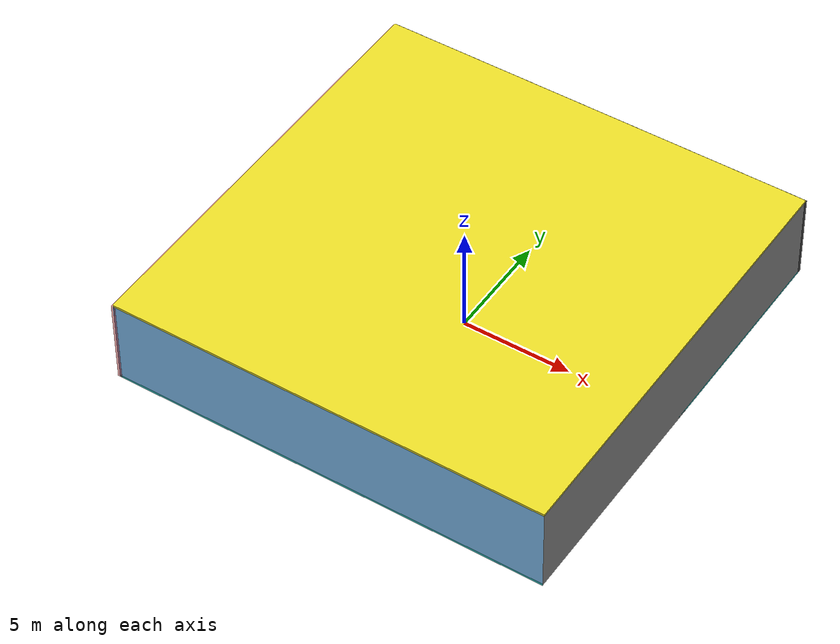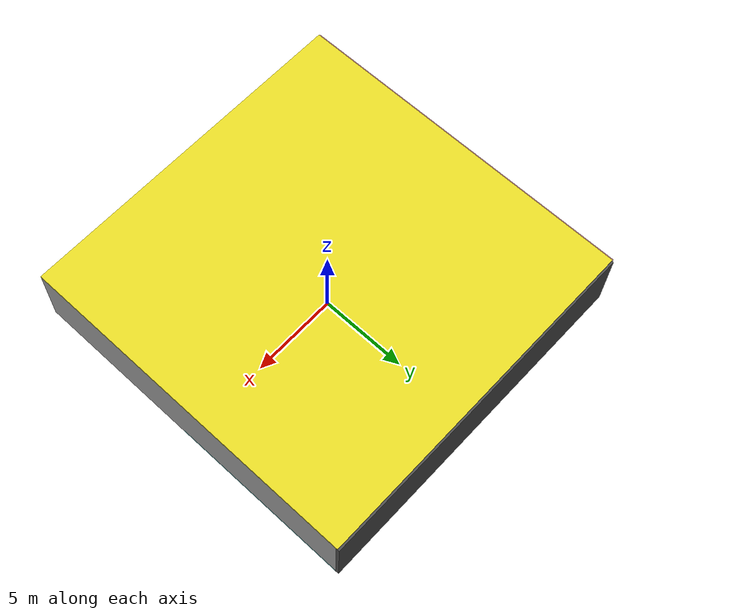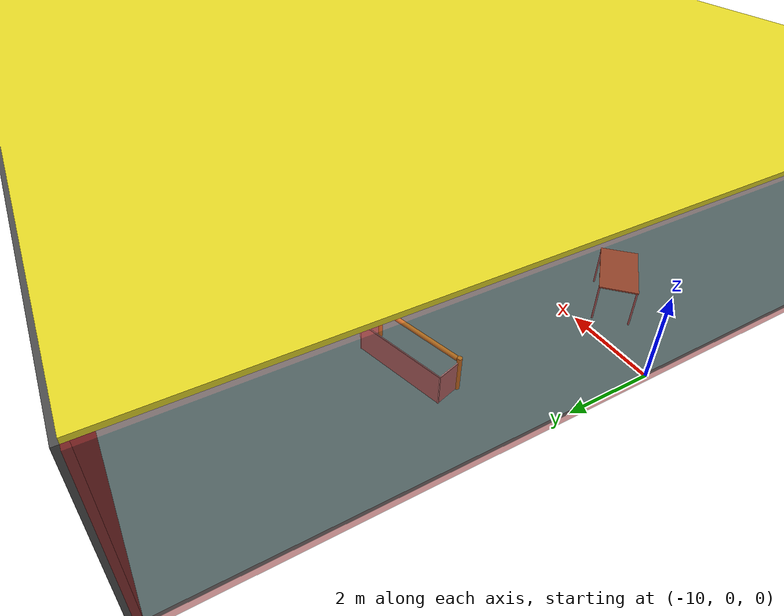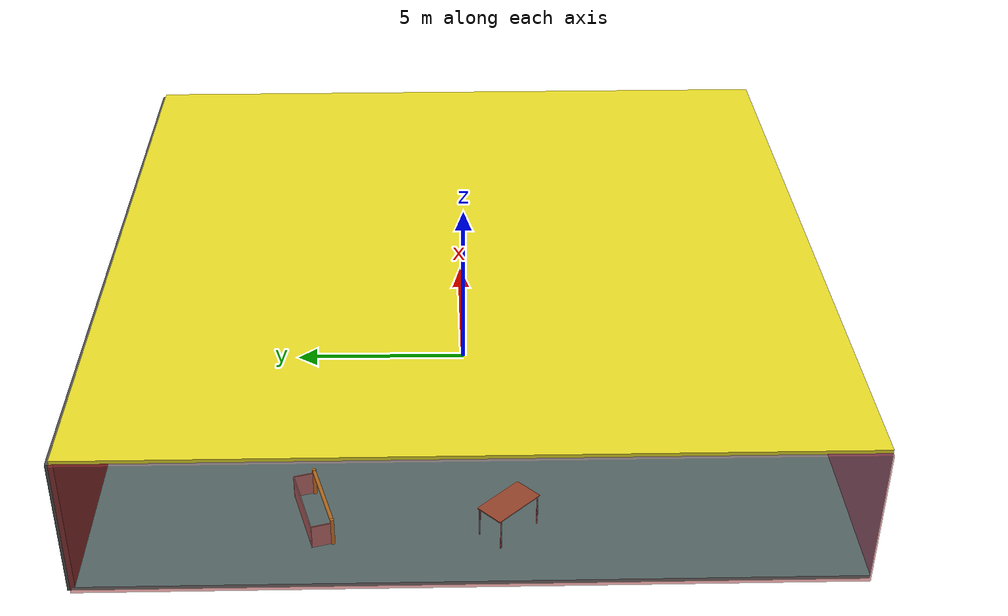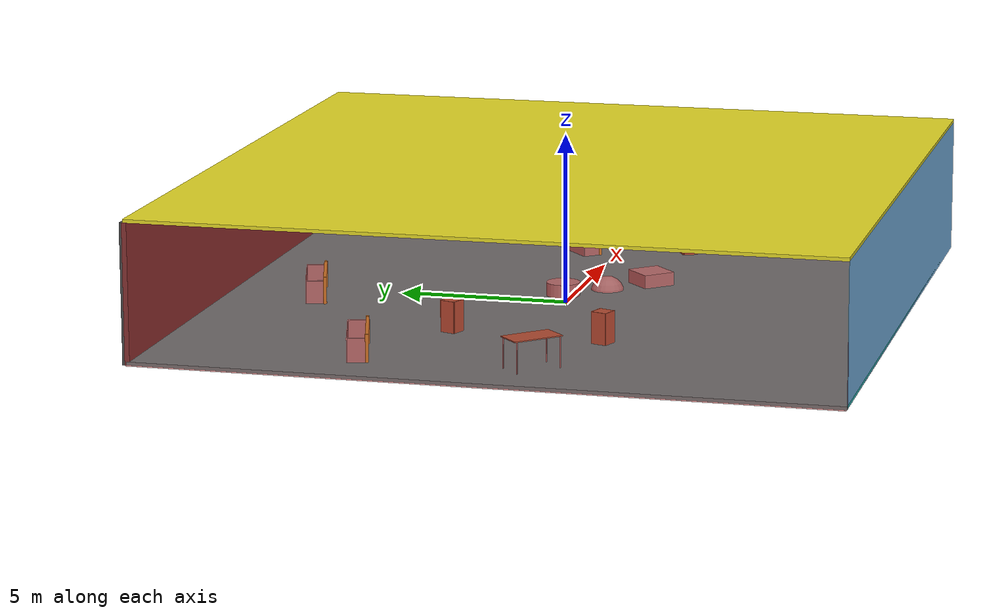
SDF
<sdf version="1.4">
 <world name="default">
  <physics type="ode">
   <max_step_size>0.001</max_step_size>
   <real_time_factor>1</real_time_factor>
   <real_time_update_rate>1000</real_time_update_rate>
   <gravity>0 0 -9.8</gravity>
  </physics>
  <scene><ambient>0.4 0.4 0.4 1</ambient><background>0.7 0.7 0.7 1</background><shadows>1</shadows></scene>
  <model name="Surrounding">
   <static>1</static>
   <link name="Ceiling">
    <collision name="Ceiling_Collision"><geometry><box><size>20 20 0.1</size></box></geometry></collision>
    <visual name="Ceiling_Visual">
     <geometry><box><size>20 20 0.1</size></box></geometry>
     <material>
      <script><uri>file://media/materials/scripts/gazebo.material</uri><name>Gazebo/YellowGlow</name></script>
     </material>
    </visual>
    <pose>0 0 4.05 0 0 0</pose>
   </link>
   <link name="Wall_South">
    <collision name="Wall_South_Collision">
     <geometry><box><size>20 0 4</size></box></geometry>
     <pose>0 0 2 0 -0 0</pose>
    </collision>
    <visual name="Wall_South_Visual">
     <pose>0 0 2 0 -0 0</pose>
     <geometry><box><size>20 0 4</size></box></geometry>
     <material>
      <script><uri>file://media/materials/scripts/gazebo.material</uri><name>Gazebo/SkyBlue</name></script>
     </material>
    </visual>
    <velocity_decay><linear>0</linear><angular>0</angular></velocity_decay>
    <pose>0 -10 0 0 -0 0</pose>
   </link>
   <link name="Wall_East">
    <collision name="Wall_21_Collision">
     <geometry><box><size>20 0 4</size></box></geometry>
     <pose>0 0 2 0 -0 0</pose>
    </collision>
    <visual name="Wall_21_Visual">
     <pose>0 0 2 0 -0 0</pose>
     <geometry><box><size>20 0 4</size></box></geometry>
     <material>
      <script><uri>file://media/materials/scripts/gazebo.material</uri><name>Gazebo/GreyGradientSky</name></script>
     </material>
    </visual>
    <velocity_decay><linear>0</linear><angular>0</angular></velocity_decay>
    <pose>10 0 0 0 -0 1.5708</pose>
   </link>
   <link name="Wall_North">
    <collision name="Wall_22_Collision">
     <geometry><box><size>20 0.2 4</size></box></geometry>
     <pose>0 0 2 0 -0 0</pose>
    </collision>
    <visual name="Wall_22_Visual">
     <pose>0 0 2 0 -0 0</pose>
     <geometry><box><size>20 0.2 4</size></box></geometry>
     <material>
      <script><uri>file://media/materials/scripts/gazebo.material</uri><name>Gazebo/Road</name></script>
     </material>
    </visual>
    <velocity_decay><linear>0</linear><angular>0</angular></velocity_decay>
    <pose>0 10 0 0 -0 0</pose>
   </link>
   <link name="Wall_West">
    <collision name="Wall_23_Collision">
     <geometry><box><size>20 0.2 4</size></box></geometry>
     <pose>0 0 2 0 -0 0</pose>
    </collision>
    <visual name="Wall_23_Visual">
     <pose>0 0 2 0 -0 0</pose>
     <geometry><box><size>20 0.2 4</size></box></geometry>
     <material>
      <script><uri>file://media/materials/scripts/gazebo.material</uri><name>Gazebo/RedTransparent</name></script>
     </material>
    </visual>
    <velocity_decay><linear>0</linear><angular>0</angular></velocity_decay>
    <pose>-10 0 0 0 0 -1.5708</pose>
   </link>
   <link name="Ground_link">
    <collision name="collision">
     <pose>0 0 .05 0 -0 0</pose>
     <geometry><box><size>20 20 0.1</size></box></geometry>
    </collision>
    <visual name="visual">
     <pose>0 0 .05 0 -0 0</pose>
     <geometry><box><size>20 20 0.1</size></box></geometry>
     <material>
      <script>
       <uri>file://media/materials/scripts/gazebo.material</uri>
       <name>Gazebo/TurquoiseGlowOutline</name>
      </script>
     </material>
    </visual>
   </link>
   <static>1</static>
  </model>
  <spherical_coordinates>
   <surface_model>EARTH_WGS84</surface_model>
   <latitude_deg>0</latitude_deg>
   <longitude_deg>0</longitude_deg>
   <elevation>0</elevation>
   <heading_deg>0</heading_deg>
  </spherical_coordinates>
  <light name="lightball_0" type="diffuse">
   <diffuse>0.8 0.8 0.8 1</diffuse>
   <specular>0.2 0.2 0.2 1</specular>
   <attenuation>
    <range>100</range>
    <constant>0.7</constant>
    <linear>0.01</linear>
    <quadratic>0.001</quadratic>
   </attenuation>
   <direction>-0.5 0.1 -0.9</direction>
   <pose>2.35558864893 -6.4986682654 2.77005097983 0 0 0</pose>
  </light>
  <light name="lightball_1" type="diffuse">
   <diffuse>0.8 0.8 0.8 1</diffuse>
   <specular>0.2 0.2 0.2 1</specular>
   <attenuation>
    <range>100</range>
    <constant>0.7</constant>
    <linear>0.01</linear>
    <quadratic>0.001</quadratic>
   </attenuation>
   <direction>-0.5 0.1 -0.9</direction>
   <pose>0.2472273773 1.36731107864 1.11432075239 0 0 0</pose>
  </light>
  <light name="lightball_2" type="diffuse">
   <diffuse>0.8 0.8 0.8 1</diffuse>
   <specular>0.2 0.2 0.2 1</specular>
   <attenuation>
    <range>100</range>
    <constant>0.7</constant>
    <linear>0.01</linear>
    <quadratic>0.001</quadratic>
   </attenuation>
   <direction>-0.5 0.1 -0.9</direction>
   <pose>-1.75927075957 1.45993327126 1.69495750589 0 0 0</pose>
  </light>
  <light name="lightball_3" type="diffuse">
   <diffuse>0.8 0.8 0.8 1</diffuse>
   <specular>0.2 0.2 0.2 1</specular>
   <attenuation>
    <range>100</range>
    <constant>0.7</constant>
    <linear>0.01</linear>
    <quadratic>0.001</quadratic>
   </attenuation>
   <direction>-0.5 0.1 -0.9</direction>
   <pose>1.27216431689 -6.62511335968 3.71186036989 0 0 0</pose>
  </light>
  <include><uri>model://table</uri><pose>-8.04048630791 -0.988831290554 0 0 0 2.33798642322</pose></include>
  <include>
   <uri>model://robocup_3Dsim_goal</uri>
   <pose>-7.50130699608 3.83668981371 0 0 0 1.84791818399</pose>
  </include>
  <include><uri>model://cabinet</uri><pose>-4.8483269235 -2.24042266478 0 0 0 2.78617129616</pose></include>
  <include><uri>model://cabinet</uri><pose>-4.52199206255 2.22296025551 0 0 0 2.77738331479</pose></include>
  <include>
   <uri>model://robocup_3Dsim_goal</uri>
   <pose>-1.18725888238 7.01071810636 0 0 0 1.85663898988</pose>
  </include>
  <include>
   <uri>model://textured_shapes</uri>
   <pose>1.52357233727 -0.902334453048 0 0 0 0.742063139981</pose>
  </include>
  <include><uri>model://cabinet</uri><pose>7.61811309233 -3.73367559597 0 0 0 2.12028440509</pose></include>
  <include><uri>model://cabinet</uri><pose>6.85114385705 -2.26370400245 0 0 0 2.05873000547</pose></include>
  <include>
   <uri>model://robocup_3Dsim_goal</uri>
   <pose>6.78122121167 1.05293376289 0 0 0 2.29389607367</pose>
  </include>
 </world>
</sdf>

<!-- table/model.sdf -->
<sdf version="1.5">
  <model name="table">
    <static>true</static>
    <link name="link">
      <collision name="surface">
        <pose>0 0 1.0 0 0 0</pose>
        <geometry>
          <box>
            <size>1.5 0.8 0.03</size>
          </box>
        </geometry>
        <surface>
          <friction>
            <ode>
              <mu>0.6</mu>
              <mu2>0.6</mu2>
            </ode>
          </friction>
        </surface>
      </collision>
      <visual name="visual1">
        <pose>0 0 1.0 0 0 0</pose>
        <geometry>
          <box>
            <size>1.5 0.8 0.03</size>
          </box>
        </geometry>
        <material>
          <script>
            <uri>model://media/materials/scripts/gazebo.material</uri>
            <name>Gazebo/Wood</name>
          </script>
        </material>
      </visual>
      <collision name="front_left_leg">
        <pose>0.68 0.38 0.5 0 0 0</pose>
        <geometry>
          <cylinder>
            <radius>0.02</radius>
            <length>1.0</length>
          </cylinder>
        </geometry>
      </collision>
      <visual name="front_left_leg">
        <pose>0.68 0.38 0.5 0 0 0</pose>
        <geometry>
          <cylinder>
            <radius>0.02</radius>
            <length>1.0</length>
          </cylinder>
        </geometry>
        <material>
          <script>
            <uri>model://media/materials/scripts/gazebo.material</uri>
            <name>Gazebo/Grey</name>
          </script>
        </material>
      </visual>
      <collision name="front_right_leg">
        <pose>0.68 -0.38 0.5 0 0 0</pose>
        <geometry>
          <cylinder>
            <radius>0.02</radius>
            <length>1.0</length>
          </cylinder>
        </geometry>
      </collision>
      <visual name="front_right_leg">
        <pose>0.68 -0.38 0.5 0 0 0</pose>
        <geometry>
          <cylinder>
            <radius>0.02</radius>
            <length>1.0</length>
          </cylinder>
        </geometry>
        <material>
          <script>
            <uri>model://media/materials/scripts/gazebo.material</uri>
            <name>Gazebo/Grey</name>
          </script>
        </material>
      </visual>
      <collision name="back_right_leg">
        <pose>-0.68 -0.38 0.5 0 0 0</pose>
        <geometry>
          <cylinder>
            <radius>0.02</radius>
            <length>1.0</length>
          </cylinder>
        </geometry>
      </collision>
      <visual name="back_right_leg">
        <pose>-0.68 -0.38 0.5 0 0 0</pose>
        <geometry>
          <cylinder>
            <radius>0.02</radius>
            <length>1.0</length>
          </cylinder>
        </geometry>
        <material>
          <script>
            <uri>model://media/materials/scripts/gazebo.material</uri>
            <name>Gazebo/Grey</name>
          </script>
        </material>
      </visual>
      <collision name="back_left_leg">
        <pose>-0.68 0.38 0.5 0 0 0</pose>
        <geometry>
          <cylinder>
            <radius>0.02</radius>
            <length>1.0</length>
          </cylinder>
        </geometry>
      </collision>
      <visual name="back_left_leg">
        <pose>-0.68 0.38 0.5 0 0 0</pose>
        <geometry>
          <cylinder>
            <radius>0.02</radius>
            <length>1.0</length>
          </cylinder>
        </geometry>
        <material>
          <script>
            <uri>model://media/materials/scripts/gazebo.material</uri>
            <name>Gazebo/Grey</name>
          </script>
        </material>
      </visual>
    </link>
  </model>
</sdf>

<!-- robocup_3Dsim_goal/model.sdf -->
<sdf version="1.5">
  <model name="robocup_3d_goal">
    <static>true</static>
    <link name="left_post">
      <pose>0 1.05 0.45 0 0 0</pose>
      <collision name="collision">
        <geometry>
          <cylinder>
            <radius>0.05</radius>
            <length>0.9</length>
          </cylinder>
        </geometry>
      </collision>
      <visual name="visual">
        <geometry>
          <cylinder>
            <radius>0.05</radius>
            <length>0.9</length>
          </cylinder>
        </geometry>
        <material>
          <script>
            <uri>file://media/materials/scripts/gazebo.material</uri>
            <name>Gazebo/ZincYellow</name>
          </script>
        </material>
      </visual>
    </link>
    <link name="left_support_horiz_lower">
      <pose>0.30 1.05 0.01 0 0 0</pose>
      <collision name="collision">
        <geometry>
          <box>
            <size>0.50 0.02 0.02</size>
          </box>
        </geometry>
      </collision>
      <visual name="visual">
        <geometry>
          <box>
            <size>0.50 0.02 0.02</size>
          </box>
        </geometry>
        <material>
          <script>
            <uri>file://media/materials/scripts/gazebo.material</uri>
            <name>Gazebo/White</name>
          </script>
        </material>
      </visual>
    </link>
    <link name="left_support_horiz_upper">
      <pose>0.30 1.05 0.79 0 0 0</pose>
      <collision name="collision">
        <geometry>
          <box>
            <size>0.50 0.02 0.02</size>
          </box>
        </geometry>
      </collision>
      <visual name="visual">
        <geometry>
          <box>
            <size>0.50 0.02 0.02</size>
          </box>
        </geometry>
        <material>
          <script>
            <uri>file://media/materials/scripts/gazebo.material</uri>
            <name>Gazebo/White</name>
          </script>
        </material>
      </visual>
    </link>
    <link name="left_support_vertical">
      <pose>0.56 1.05 0.4 0 1.5708 0</pose>
      <collision name="collision">
        <geometry>
          <box>
            <size>0.80 0.02 0.02</size>
          </box>
        </geometry>
      </collision>
      <visual name="visual">
        <geometry>
          <box>
            <size>0.80 0.02 0.02</size>
          </box>
        </geometry>
        <material>
          <script>
            <uri>file://media/materials/scripts/gazebo.material</uri>
            <name>Gazebo/White</name>
          </script>
        </material>
      </visual>
    </link>
    <link name="right_support_horiz_lower">
      <pose>0.30 -1.05 0.01 0 0 0</pose>
      <collision name="collision">
        <geometry>
          <box>
            <size>0.50 0.02 0.02</size>
          </box>
        </geometry>
      </collision>
      <visual name="visual">
        <geometry>
          <box>
            <size>0.50 0.02 0.02</size>
          </box>
        </geometry>
        <material>
          <script>
            <uri>file://media/materials/scripts/gazebo.material</uri>
            <name>Gazebo/White</name>
          </script>
        </material>
      </visual>
    </link>
    <link name="right_support_horiz_upper">
      <pose>0.30 -1.05 0.79 0 0 0</pose>
      <collision name="collision">
        <geometry>
          <box>
            <size>0.50 0.02 0.02</size>
          </box>
        </geometry>
      </collision>
      <visual name="visual">
        <geometry>
          <box>
            <size>0.50 0.02 0.02</size>
          </box>
        </geometry>
        <material>
          <script>
            <uri>file://media/materials/scripts/gazebo.material</uri>
            <name>Gazebo/White</name>
          </script>
        </material>
      </visual>
    </link>
    <link name="right_support_vertical">
      <pose>0.56 -1.05 0.4 0 1.5708 0</pose>
      <collision name="collision">
        <geometry>
          <box>
            <size>0.80 0.02 0.02</size>
          </box>
        </geometry>
      </collision>
      <visual name="visual">
        <geometry>
          <box>
            <size>0.80 0.02 0.02</size>
          </box>
        </geometry>
        <material>
          <script>
            <uri>file://media/materials/scripts/gazebo.material</uri>
            <name>Gazebo/White</name>
          </script>
        </material>
      </visual>
    </link>
    <link name="center_support_horiz_lower">
      <pose>0.56 0 0.01 0 1.5708 0</pose>
      <collision name="collision">
        <geometry>
          <box>
            <size>0.02 2.08 0.02</size>
          </box>
        </geometry>
      </collision>
      <visual name="visual">
        <geometry>
          <box>
            <size>0.02 2.08 0.02</size>
          </box>
        </geometry>
        <material>
          <script>
            <uri>file://media/materials/scripts/gazebo.material</uri>
            <name>Gazebo/White</name>
          </script>
        </material>
      </visual>
    </link>
    <link name="center_support_horiz_upper">
      <pose>0.56 0 0.79 0 1.5708 0</pose>
      <collision name="collision">
        <geometry>
          <box>
            <size>0.02 2.08 0.02</size>
          </box>
        </geometry>
      </collision>
      <visual name="visual">
        <geometry>
          <box>
            <size>0.02 2.08 0.02</size>
          </box>
        </geometry>
        <material>
          <script>
            <uri>file://media/materials/scripts/gazebo.material</uri>
            <name>Gazebo/White</name>
          </script>
        </material>
      </visual>
    </link>
    <link name="right_post">
      <pose>0 -1.05 0.45 0 0 0</pose>
      <collision name="collision">
        <geometry>
          <cylinder>
            <radius>0.05</radius>
            <length>0.9</length>
          </cylinder>
        </geometry>
      </collision>
      <visual name="visual">
        <geometry>
          <cylinder>
            <radius>0.05</radius>
            <length>0.9</length>
          </cylinder>
        </geometry>
        <material>
          <script>
            <uri>file://media/materials/scripts/gazebo.material</uri>
            <name>Gazebo/ZincYellow</name>
          </script>
        </material>
      </visual>
    </link>
    <link name="crossbar">
      <pose>0 0 0.85 1.57 1.57 0</pose>
      <collision name="collision">
        <geometry>
          <cylinder>
            <radius>0.05</radius>
            <length>2.0</length>
          </cylinder>
        </geometry>
      </collision>
      <visual name="visual">
        <geometry>
          <cylinder>
            <radius>0.05</radius>
            <length>2.0</length>
          </cylinder>
        </geometry>
        <material>
          <script>
            <uri>file://media/materials/scripts/gazebo.material</uri>
            <name>Gazebo/ZincYellow</name>
          </script>
        </material>
      </visual>
    </link>
    <link name="center_net">
      <pose>0.56 0 0.40 0 0 0</pose>
      <collision name="collision">
        <geometry>
          <box>
            <size>0.01 2.1 0.80</size>
          </box>
        </geometry>
      </collision>
      <visual name="visual">
        <geometry>
          <box>
            <size>0.01 2.1 0.80</size>
          </box>
        </geometry>
        <material>
          <script>
            <uri>model://../model_source/models/robocup09_spl_field/materials/scripts/</uri>
            <uri>model://../model_source/models/robocup09_spl_field/materials/textures/</uri>
            <name>RoboCup/Net</name>
          </script>
        </material>
      </visual>
    </link>
    <link name="left_net">
      <pose>0.30 1.05 0.40 0 0 0</pose>
      <collision name="collision">
        <geometry>
          <box>
            <size>0.50 0.01 0.76</size>
          </box>
        </geometry>
      </collision>
      <visual name="visual">
        <geometry>
          <box>
            <size>0.50 0.01 0.76</size>
          </box>
        </geometry>
        <material>
          <script>
            <uri>model://../model_source/models/robocup09_spl_field/materials/scripts/</uri>
            <uri>model://../model_source/models/robocup09_spl_field/materials/textures/</uri>
            <name>RoboCup/Net</name>
          </script>
        </material>
      </visual>
    </link>
    <link name="right_net">
      <pose>0.30 -1.05 0.40 0 0 0</pose>
      <collision name="collision">
        <geometry>
          <box>
            <size>0.50 0.01 0.76</size>
          </box>
        </geometry>
      </collision>
      <visual name="visual">
        <geometry>
          <box>
            <size>0.50 0.01 0.76</size>
          </box>
        </geometry>
        <material>
          <script>
            <uri>model://../model_source/models/robocup09_spl_field/materials/scripts/</uri>
            <uri>model://../model_source/models/robocup09_spl_field/materials/textures/</uri>
            <name>RoboCup/Net</name>
          </script>
        </material>
      </visual>
    </link>
  </model>
</sdf>

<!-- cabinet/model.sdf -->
<sdf version="1.5">
  <model name="cabinet">
    <static>true</static>
    <link name="cabinet_bottom_plate">
      <inertial>
        <pose>0 0 -1 0 0 0</pose>
        <inertia>
          <ixx>2.050000</ixx>
          <ixy>0</ixy>
          <ixz>0</ixz>
          <iyy>2.050000</iyy>
          <iyz>0</iyz>
          <izz>2.050000</izz>
        </inertia>
        <mass>25.000000</mass>
      </inertial>
      <collision name="cabinet_bottom_plate_geom">
        <pose>0 0 0.010000 0 0 0</pose>
        <geometry>
          <box>
            <size>0.450000 0.450000 0.020000</size>
          </box>
        </geometry>
      </collision>
      <visual name="cabinet_bottom_plate_geom_visual">
        <pose>0 0 0.010000 0 0 0</pose>
        <geometry>
          <box>
            <size>0.450000 0.450000 0.020000</size>
          </box>
        </geometry>
        <material>
          <script>
            <uri>model://media/materials/scripts/gazebo.material</uri>
            <name>Gazebo/Wood</name>
          </script>
        </material>
      </visual>
      <collision name="cabinet_bottom_plate_geom_cabinet_back_plate">
        <pose>0.235000 0 0.510000 0 0 0</pose>
        <geometry>
          <box>
            <size>0.020000 0.450000 1.020000</size>
          </box>
        </geometry>
      </collision>
      <visual name="cabinet_bottom_plate_geom_cabinet_back_plate_visual">
        <pose>0.235000 0 0.510000 0 0 0</pose>
        <geometry>
          <box>
            <size>0.020000 0.450000 1.020000</size>
          </box>
        </geometry>
        <material>
          <script>
            <uri>model://media/materials/scripts/gazebo.material</uri>
            <name>Gazebo/Wood</name>
          </script>
        </material>
      </visual>
      <collision name="cabinet_bottom_plate_geom_cabinet_left_plate">
        <pose>0 0.235000 0.510000 0 0 0</pose>
        <geometry>
          <box>
            <size>0.450000 0.020000 1.020000</size>
          </box>
        </geometry>
      </collision>
      <visual name="cabinet_bottom_plate_geom_cabinet_left_plate_visual">
        <pose>0 0.235000 0.510000 0 0 0</pose>
        <geometry>
          <box>
            <size>0.450000 0.020000 1.020000</size>
          </box>
        </geometry>
        <material>
          <script>
            <uri>model://media/materials/scripts/gazebo.material</uri>
            <name>Gazebo/Wood</name>
          </script>
        </material>
      </visual>
      <collision name="cabinet_bottom_plate_geom_cabinet_middle_plate">
        <pose>0 0 0.510000 0 0 0</pose>
        <geometry>
          <box>
            <size>0.450000 0.450000 0.020000</size>
          </box>
        </geometry>
      </collision>
      <visual name="cabinet_bottom_plate_geom_cabinet_middle_plate_visual">
        <pose>0 0 0.510000 0 0 0</pose>
        <geometry>
          <box>
            <size>0.450000 0.450000 0.020000</size>
          </box>
        </geometry>
        <material>
          <script>
            <uri>model://media/materials/scripts/gazebo.material</uri>
            <name>Gazebo/Wood</name>
          </script>
        </material>
      </visual>
      <collision name="cabinet_bottom_plate_geom_cabinet_right_plate">
        <pose>0 -0.235000 0.510000 0 0 0</pose>
        <geometry>
          <box>
            <size>0.450000 0.020000 1.020000</size>
          </box>
        </geometry>
      </collision>
      <visual name="cabinet_bottom_plate_geom_cabinet_right_plate_visual">
        <pose>0 -0.235000 0.510000 0 0 0</pose>
        <geometry>
          <box>
            <size>0.450000 0.020000 1.020000</size>
          </box>
        </geometry>
        <material>
          <script>
            <uri>model://media/materials/scripts/gazebo.material</uri>
            <name>Gazebo/Wood</name>
          </script>
        </material>
      </visual>
      <collision name="cabinet_bottom_plate_geom_cabinet_top_plate">
        <pose>0 0 1.010000 0 0 0</pose>
        <geometry>
          <box>
            <size>0.450000 0.450000 0.020000</size>
          </box>
        </geometry>
      </collision>
      <visual name="cabinet_bottom_plate_geom_cabinet_top_plate_visual">
        <pose>0 0 1.010000 0 0 0</pose>
        <geometry>
          <box>
            <size>0.450000 0.450000 0.020000</size>
          </box>
        </geometry>
        <material>
          <script>
            <uri>model://media/materials/scripts/gazebo.material</uri>
            <name>Gazebo/Wood</name>
          </script>
        </material>
      </visual>
    </link>
  </model>
</sdf>

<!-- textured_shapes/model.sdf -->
<sdf version="1.6">
  <model name="textured_shapes">
    <pose>0 0 0.5 0 0 0</pose>
    <link name="box">
      <pose>0 -1.5 0 0 0 0</pose>
      <collision name="collision">
        <geometry>
          <box>
            <size>1 1 1</size>
          </box>
        </geometry>
      </collision>
      <visual name="visual">
        <geometry>
          <box>
            <size>1 1 1</size>
          </box>
        </geometry>
        <material>
          <script>
            <uri>model://../model_source/models/textured_shapes/materials/scripts</uri>
            <uri>model://../model_source/models/textured_shapes/materials/textures</uri>
            <name>TexturedShape/Squares</name>
          </script>
        </material>
      </visual>
    </link>
    <link name="sphere">
      <collision name="collision">
        <geometry>
          <sphere>
            <radius>0.5</radius>
          </sphere>
        </geometry>
      </collision>
      <visual name="visual">
        <geometry>
          <sphere>
            <radius>0.5</radius>
          </sphere>
        </geometry>
        <material>
          <script>
            <uri>model://../model_source/models/textured_shapes/materials/scripts</uri>
            <uri>model://../model_source/models/textured_shapes/materials/textures</uri>
            <name>TexturedShape/Squares</name>
          </script>
        </material>
      </visual>
    </link>
    <link name="cylinder">
      <pose>0 1.5 0 0 0 0</pose>
      <collision name="collision">
        <geometry>
          <cylinder>
            <radius>0.5</radius>
            <length>1</length>
          </cylinder>
        </geometry>
      </collision>
      <visual name="visual">
        <geometry>
          <cylinder>
            <radius>0.5</radius>
            <length>1</length>
          </cylinder>
        </geometry>
        <material>
          <script>
            <uri>model://../model_source/models/textured_shapes/materials/scripts</uri>
            <uri>model://../model_source/models/textured_shapes/materials/textures</uri>
            <name>TexturedShape/Squares</name>
          </script>
        </material>
      </visual>
    </link>
  </model>
</sdf>
